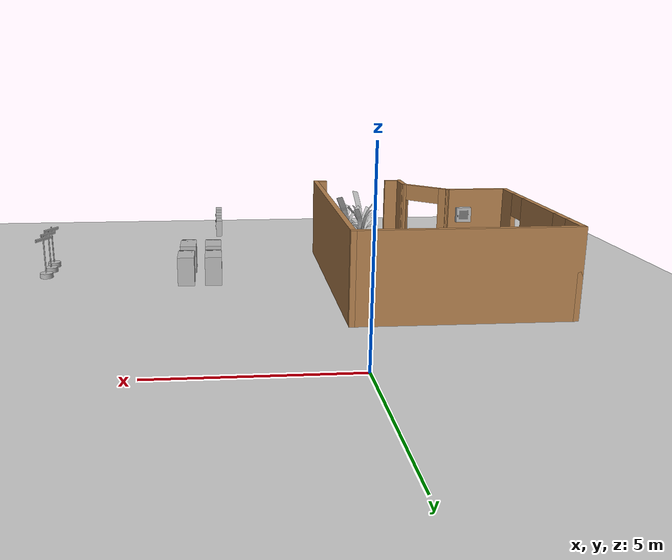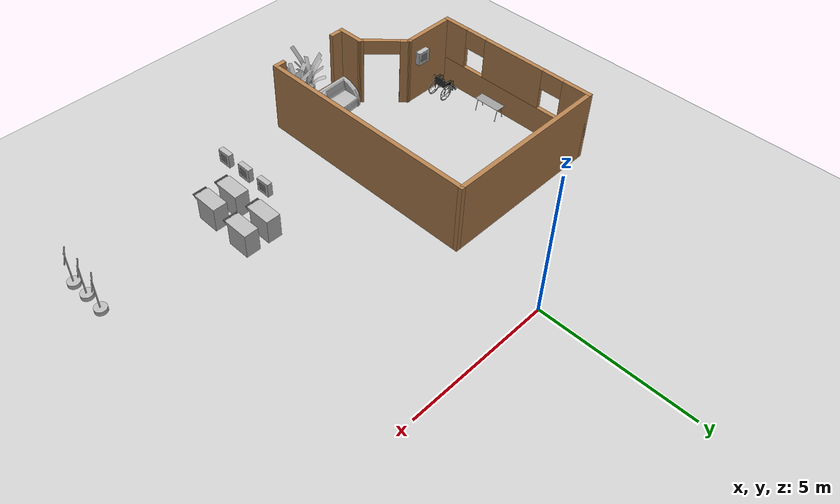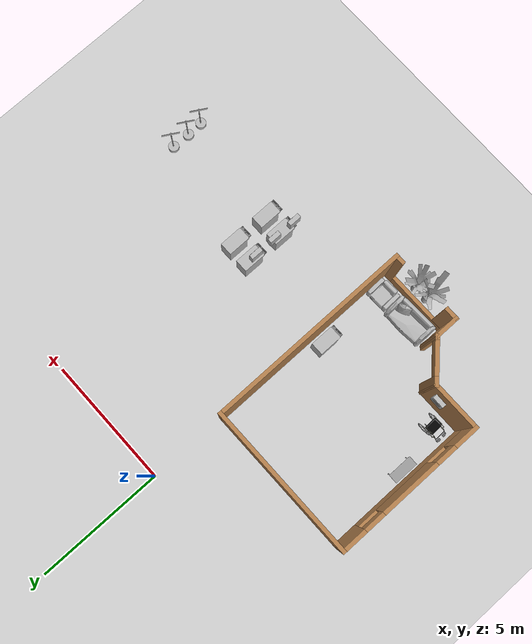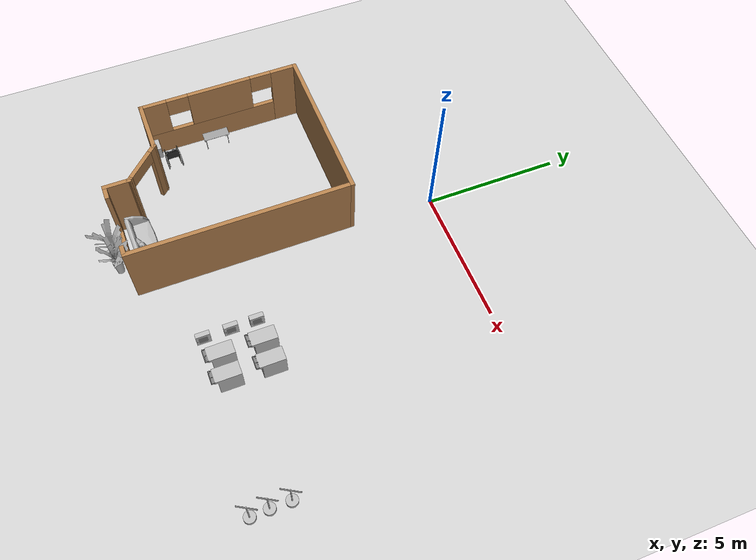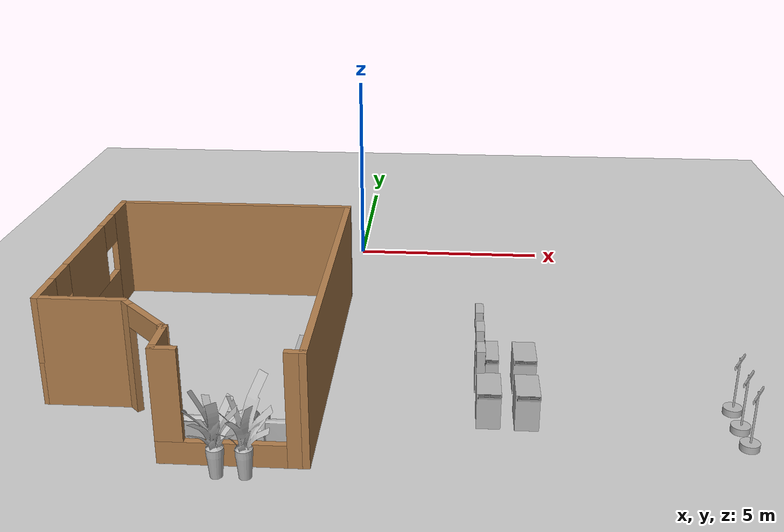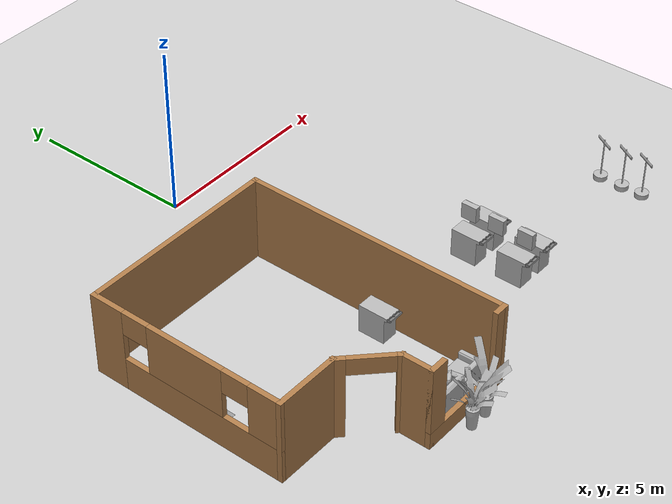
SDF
<sdf version="1.6">
 <world name="default">
  <model name="ground_plane">
   <static>1</static>
   <link name="link">
    <collision name="collision">
     <geometry><plane><normal>0 0 1</normal><size>100 100</size></plane></geometry>
     <surface>
      <contact><collide_bitmask>65535</collide_bitmask></contact>
      <friction><ode><mu>100</mu><mu2>50</mu2></ode></friction>
     </surface>
    </collision>
    <visual name="visual">
     <cast_shadows>0</cast_shadows>
     <geometry><plane><normal>0 0 1</normal><size>100 100</size></plane></geometry>
     <material>
      <script><uri>file://media/materials/scripts/gazebo.material</uri><name>Gazebo/Grey</name></script>
     </material>
    </visual>
   </link>
  </model>
  <model name="hospital_room_empty_clone">
   <link name="Wall_0">
    <pose>-4e-06 -3.9165 0 0 -0 0</pose>
    <visual name="Wall_0_Visual">
     <pose>0 0 1.25 0 -0 0</pose>
     <geometry><box><size>6 0.15 2.5</size></box></geometry>
     <material>
      <script><uri>file://media/materials/scripts/gazebo.material</uri><name>Gazebo/Wood</name></script>
      <ambient>1 1 1 1</ambient>
     </material>
     <meta><layer>0</layer></meta>
    </visual>
    <collision name="Wall_0_Collision">
     <pose>0 0 1.25 0 -0 0</pose>
     <geometry><box><size>6 0.15 2.5</size></box></geometry>
     <surface>
      <friction>
       <ode><mu>1</mu><mu2>1</mu2><fdir1>0 0 0</fdir1><slip1>0</slip1><slip2>0</slip2></ode>
       <torsional>
        <coefficient>1</coefficient>
        <patch_radius>0</patch_radius>
        <surface_radius>0</surface_radius>
        <use_patch_radius>1</use_patch_radius>
        <ode><slip>0</slip></ode>
       </torsional>
      </friction>
      <bounce><restitution_coefficient>0</restitution_coefficient><threshold>1e+06</threshold></bounce>
      <contact>
       <collide_without_contact>0</collide_without_contact>
       <collide_without_contact_bitmask>1</collide_without_contact_bitmask>
       <collide_bitmask>1</collide_bitmask>
       <ode>
        <soft_cfm>0</soft_cfm>
        <soft_erp>0.2</soft_erp>
        <kp>1e+13</kp>
        <kd>1</kd>
        <max_vel>0.01</max_vel>
        <min_depth>0</min_depth>
       </ode>
       <bullet>
        <split_impulse>1</split_impulse>
        <split_impulse_penetration_threshold>-0.01</split_impulse_penetration_threshold>
        <soft_cfm>0</soft_cfm>
        <soft_erp>0.2</soft_erp>
        <kp>1e+13</kp>
        <kd>1</kd>
       </bullet>
      </contact>
     </surface>
    </collision>
   </link>
   <link name="Wall_3">
    <pose>-2.925 0 0 0 -0 1.5708</pose>
    <visual name="Wall_3_Visual">
     <pose>0 0 1.25 0 -0 0</pose>
     <geometry><box><size>7.98302 0.15 2.5</size></box></geometry>
     <material>
      <script><uri>file://media/materials/scripts/gazebo.material</uri><name>Gazebo/Wood</name></script>
      <ambient>1 1 1 1</ambient>
     </material>
     <meta><layer>0</layer></meta>
    </visual>
    <collision name="Wall_3_Collision">
     <pose>0 0 1.25 0 -0 0</pose>
     <geometry><box><size>7.98302 0.15 2.5</size></box></geometry>
     <surface>
      <friction>
       <ode><mu>1</mu><mu2>1</mu2><fdir1>0 0 0</fdir1><slip1>0</slip1><slip2>0</slip2></ode>
       <torsional>
        <coefficient>1</coefficient>
        <patch_radius>0</patch_radius>
        <surface_radius>0</surface_radius>
        <use_patch_radius>1</use_patch_radius>
        <ode><slip>0</slip></ode>
       </torsional>
      </friction>
      <bounce><restitution_coefficient>0</restitution_coefficient><threshold>1e+06</threshold></bounce>
      <contact>
       <collide_without_contact>0</collide_without_contact>
       <collide_without_contact_bitmask>1</collide_without_contact_bitmask>
       <collide_bitmask>1</collide_bitmask>
       <ode>
        <soft_cfm>0</soft_cfm>
        <soft_erp>0.2</soft_erp>
        <kp>1e+13</kp>
        <kd>1</kd>
        <max_vel>0.01</max_vel>
        <min_depth>0</min_depth>
       </ode>
       <bullet>
        <split_impulse>1</split_impulse>
        <split_impulse_penetration_threshold>-0.01</split_impulse_penetration_threshold>
        <soft_cfm>0</soft_cfm>
        <soft_erp>0.2</soft_erp>
        <kp>1e+13</kp>
        <kd>1</kd>
       </bullet>
      </contact>
     </surface>
    </collision>
   </link>
   <link name="Wall_4">
    <pose>-1.5 3.9165 0 0 -0 0</pose>
    <visual name="Wall_4_Visual_0">
     <pose>-1.28125 0 1.25 0 -0 0</pose>
     <geometry><box><size>0.437506 0.15 2.5</size></box></geometry>
     <material>
      <script><uri>file://media/materials/scripts/gazebo.material</uri><name>Gazebo/Wood</name></script>
      <ambient>1 1 1 1</ambient>
     </material>
     <meta><layer>0</layer></meta>
    </visual>
    <visual name="Wall_4_Visual_1">
     <pose>0.218753 0 0.25 0 -0 0</pose>
     <geometry><box><size>2.56249 0.15 0.5</size></box></geometry>
     <material>
      <script><uri>file://media/materials/scripts/gazebo.material</uri><name>Gazebo/Wood</name></script>
      <ambient>1 1 1 1</ambient>
     </material>
     <meta><layer>0</layer></meta>
    </visual>
    <visual name="Wall_4_Visual_2">
     <pose>1.21875 0 1.5 0 -0 0</pose>
     <geometry><box><size>0.562494 0.15 2</size></box></geometry>
     <material>
      <script><uri>file://media/materials/scripts/gazebo.material</uri><name>Gazebo/Wood</name></script>
      <ambient>1 1 1 1</ambient>
     </material>
     <meta><layer>0</layer></meta>
    </visual>
    <collision name="Wall_4_Collision_0">
     <pose>-1.28125 0 1.25 0 -0 0</pose>
     <geometry><box><size>0.437506 0.15 2.5</size></box></geometry>
     <surface>
      <friction>
       <ode><mu>1</mu><mu2>1</mu2><fdir1>0 0 0</fdir1><slip1>0</slip1><slip2>0</slip2></ode>
       <torsional>
        <coefficient>1</coefficient>
        <patch_radius>0</patch_radius>
        <surface_radius>0</surface_radius>
        <use_patch_radius>1</use_patch_radius>
        <ode><slip>0</slip></ode>
       </torsional>
      </friction>
      <bounce><restitution_coefficient>0</restitution_coefficient><threshold>1e+06</threshold></bounce>
      <contact>
       <collide_without_contact>0</collide_without_contact>
       <collide_without_contact_bitmask>1</collide_without_contact_bitmask>
       <collide_bitmask>1</collide_bitmask>
       <ode>
        <soft_cfm>0</soft_cfm>
        <soft_erp>0.2</soft_erp>
        <kp>1e+13</kp>
        <kd>1</kd>
        <max_vel>0.01</max_vel>
        <min_depth>0</min_depth>
       </ode>
       <bullet>
        <split_impulse>1</split_impulse>
        <split_impulse_penetration_threshold>-0.01</split_impulse_penetration_threshold>
        <soft_cfm>0</soft_cfm>
        <soft_erp>0.2</soft_erp>
        <kp>1e+13</kp>
        <kd>1</kd>
       </bullet>
      </contact>
     </surface>
    </collision>
    <collision name="Wall_4_Collision_1">
     <pose>0.218753 0 0.25 0 -0 0</pose>
     <geometry><box><size>2.56249 0.15 0.5</size></box></geometry>
     <surface>
      <friction>
       <ode><mu>1</mu><mu2>1</mu2><fdir1>0 0 0</fdir1><slip1>0</slip1><slip2>0</slip2></ode>
       <torsional>
        <coefficient>1</coefficient>
        <patch_radius>0</patch_radius>
        <surface_radius>0</surface_radius>
        <use_patch_radius>1</use_patch_radius>
        <ode><slip>0</slip></ode>
       </torsional>
      </friction>
      <bounce><restitution_coefficient>0</restitution_coefficient><threshold>1e+06</threshold></bounce>
      <contact>
       <collide_without_contact>0</collide_without_contact>
       <collide_without_contact_bitmask>1</collide_without_contact_bitmask>
       <collide_bitmask>1</collide_bitmask>
       <ode>
        <soft_cfm>0</soft_cfm>
        <soft_erp>0.2</soft_erp>
        <kp>1e+13</kp>
        <kd>1</kd>
        <max_vel>0.01</max_vel>
        <min_depth>0</min_depth>
       </ode>
       <bullet>
        <split_impulse>1</split_impulse>
        <split_impulse_penetration_threshold>-0.01</split_impulse_penetration_threshold>
        <soft_cfm>0</soft_cfm>
        <soft_erp>0.2</soft_erp>
        <kp>1e+13</kp>
        <kd>1</kd>
       </bullet>
      </contact>
     </surface>
    </collision>
    <collision name="Wall_4_Collision_2">
     <pose>1.21875 0 1.5 0 -0 0</pose>
     <geometry><box><size>0.562494 0.15 2</size></box></geometry>
     <surface>
      <friction>
       <ode><mu>1</mu><mu2>1</mu2><fdir1>0 0 0</fdir1><slip1>0</slip1><slip2>0</slip2></ode>
       <torsional>
        <coefficient>1</coefficient>
        <patch_radius>0</patch_radius>
        <surface_radius>0</surface_radius>
        <use_patch_radius>1</use_patch_radius>
        <ode><slip>0</slip></ode>
       </torsional>
      </friction>
      <bounce><restitution_coefficient>0</restitution_coefficient><threshold>1e+06</threshold></bounce>
      <contact>
       <collide_without_contact>0</collide_without_contact>
       <collide_without_contact_bitmask>1</collide_without_contact_bitmask>
       <collide_bitmask>1</collide_bitmask>
       <ode>
        <soft_cfm>0</soft_cfm>
        <soft_erp>0.2</soft_erp>
        <kp>1e+13</kp>
        <kd>1</kd>
        <max_vel>0.01</max_vel>
        <min_depth>0</min_depth>
       </ode>
       <bullet>
        <split_impulse>1</split_impulse>
        <split_impulse_penetration_threshold>-0.01</split_impulse_penetration_threshold>
        <soft_cfm>0</soft_cfm>
        <soft_erp>0.2</soft_erp>
        <kp>1e+13</kp>
        <kd>1</kd>
       </bullet>
      </contact>
     </surface>
    </collision>
   </link>
   <link name="Wall_5">
    <pose>-0.075004 3.4915 0 0 0 -1.5708</pose>
    <visual name="Wall_5_Visual">
     <pose>0 0 1.25 0 -0 0</pose>
     <geometry><box><size>1 0.15 2.5</size></box></geometry>
     <material>
      <script><uri>file://media/materials/scripts/gazebo.material</uri><name>Gazebo/Wood</name></script>
      <ambient>1 1 1 1</ambient>
     </material>
     <meta><layer>0</layer></meta>
    </visual>
    <collision name="Wall_5_Collision">
     <pose>0 0 1.25 0 -0 0</pose>
     <geometry><box><size>1 0.15 2.5</size></box></geometry>
     <surface>
      <friction>
       <ode><mu>1</mu><mu2>1</mu2><fdir1>0 0 0</fdir1><slip1>0</slip1><slip2>0</slip2></ode>
       <torsional>
        <coefficient>1</coefficient>
        <patch_radius>0</patch_radius>
        <surface_radius>0</surface_radius>
        <use_patch_radius>1</use_patch_radius>
        <ode><slip>0</slip></ode>
       </torsional>
      </friction>
      <bounce><restitution_coefficient>0</restitution_coefficient><threshold>1e+06</threshold></bounce>
      <contact>
       <collide_without_contact>0</collide_without_contact>
       <collide_without_contact_bitmask>1</collide_without_contact_bitmask>
       <collide_bitmask>1</collide_bitmask>
       <ode>
        <soft_cfm>0</soft_cfm>
        <soft_erp>0.2</soft_erp>
        <kp>1e+13</kp>
        <kd>1</kd>
        <max_vel>0.01</max_vel>
        <min_depth>0</min_depth>
       </ode>
       <bullet>
        <split_impulse>1</split_impulse>
        <split_impulse_penetration_threshold>-0.01</split_impulse_penetration_threshold>
        <soft_cfm>0</soft_cfm>
        <soft_erp>0.2</soft_erp>
        <kp>1e+13</kp>
        <kd>1</kd>
       </bullet>
      </contact>
     </surface>
    </collision>
   </link>
   <link name="Wall_7">
    <pose>2.925 -1 0 0 -0 1.5708</pose>
    <visual name="Wall_7_Visual_0">
     <pose>-2.47597 0 1.25 0 -0 0</pose>
     <geometry><box><size>1.03106 0.15 2.5</size></box></geometry>
     <material>
      <script><uri>file://media/materials/scripts/gazebo.material</uri><name>Gazebo/Wood</name></script>
      <ambient>0.921569 0.807843 0.615686 1</ambient>
     </material>
     <meta><layer>0</layer></meta>
    </visual>
    <visual name="Wall_7_Visual_1">
     <pose>0.515531 0 0.5 0 -0 0</pose>
     <geometry><box><size>4.95194 0.15 1</size></box></geometry>
     <material>
      <script><uri>file://media/materials/scripts/gazebo.material</uri><name>Gazebo/Wood</name></script>
      <ambient>0.921569 0.807843 0.615686 1</ambient>
     </material>
     <meta><layer>0</layer></meta>
    </visual>
    <visual name="Wall_7_Visual_2">
     <pose>0.016139 0 1.75 0 -0 0</pose>
     <geometry><box><size>2.35315 0.15 1.5</size></box></geometry>
     <material>
      <script><uri>file://media/materials/scripts/gazebo.material</uri><name>Gazebo/Wood</name></script>
      <ambient>0.921569 0.807843 0.615686 1</ambient>
     </material>
     <meta><layer>0</layer></meta>
    </visual>
    <visual name="Wall_7_Visual_3">
     <pose>2.49211 0 1.75 0 -0 0</pose>
     <geometry><box><size>0.998785 0.15 1.5</size></box></geometry>
     <material>
      <script><uri>file://media/materials/scripts/gazebo.material</uri><name>Gazebo/Wood</name></script>
      <ambient>0.921569 0.807843 0.615686 1</ambient>
     </material>
     <meta><layer>0</layer></meta>
    </visual>
    <visual name="Wall_7_Visual_4">
     <pose>-1.56044 0 2.15 0 -0 0</pose>
     <geometry><box><size>0.8 0.15 0.7</size></box></geometry>
     <material>
      <script><uri>file://media/materials/scripts/gazebo.material</uri><name>Gazebo/Wood</name></script>
      <ambient>0.921569 0.807843 0.615686 1</ambient>
     </material>
     <meta><layer>0</layer></meta>
    </visual>
    <visual name="Wall_7_Visual_5">
     <pose>1.59272 0 2.15 0 -0 0</pose>
     <geometry><box><size>0.8 0.15 0.7</size></box></geometry>
     <material>
      <script><uri>file://media/materials/scripts/gazebo.material</uri><name>Gazebo/Wood</name></script>
      <ambient>0.921569 0.807843 0.615686 1</ambient>
     </material>
     <meta><layer>0</layer></meta>
    </visual>
    <collision name="Wall_7_Collision_0">
     <pose>-2.47597 0 1.25 0 -0 0</pose>
     <geometry><box><size>1.03106 0.15 2.5</size></box></geometry>
     <surface>
      <friction>
       <ode><mu>1</mu><mu2>1</mu2><fdir1>0 0 0</fdir1><slip1>0</slip1><slip2>0</slip2></ode>
       <torsional>
        <coefficient>1</coefficient>
        <patch_radius>0</patch_radius>
        <surface_radius>0</surface_radius>
        <use_patch_radius>1</use_patch_radius>
        <ode><slip>0</slip></ode>
       </torsional>
      </friction>
      <bounce><restitution_coefficient>0</restitution_coefficient><threshold>1e+06</threshold></bounce>
      <contact>
       <collide_without_contact>0</collide_without_contact>
       <collide_without_contact_bitmask>1</collide_without_contact_bitmask>
       <collide_bitmask>1</collide_bitmask>
       <ode>
        <soft_cfm>0</soft_cfm>
        <soft_erp>0.2</soft_erp>
        <kp>1e+13</kp>
        <kd>1</kd>
        <max_vel>0.01</max_vel>
        <min_depth>0</min_depth>
       </ode>
       <bullet>
        <split_impulse>1</split_impulse>
        <split_impulse_penetration_threshold>-0.01</split_impulse_penetration_threshold>
        <soft_cfm>0</soft_cfm>
        <soft_erp>0.2</soft_erp>
        <kp>1e+13</kp>
        <kd>1</kd>
       </bullet>
      </contact>
     </surface>
    </collision>
    <collision name="Wall_7_Collision_1">
     <pose>0.515531 0 0.5 0 -0 0</pose>
     <geometry><box><size>4.95194 0.15 1</size></box></geometry>
     <surface>
      <friction>
       <ode><mu>1</mu><mu2>1</mu2><fdir1>0 0 0</fdir1><slip1>0</slip1><slip2>0</slip2></ode>
       <torsional>
        <coefficient>1</coefficient>
        <patch_radius>0</patch_radius>
        <surface_radius>0</surface_radius>
        <use_patch_radius>1</use_patch_radius>
        <ode><slip>0</slip></ode>
       </torsional>
      </friction>
      <bounce><restitution_coefficient>0</restitution_coefficient><threshold>1e+06</threshold></bounce>
      <contact>
       <collide_without_contact>0</collide_without_contact>
       <collide_without_contact_bitmask>1</collide_without_contact_bitmask>
       <collide_bitmask>1</collide_bitmask>
       <ode>
        <soft_cfm>0</soft_cfm>
        <soft_erp>0.2</soft_erp>
        <kp>1e+13</kp>
        <kd>1</kd>
        <max_vel>0.01</max_vel>
        <min_depth>0</min_depth>
       </ode>
       <bullet>
        <split_impulse>1</split_impulse>
        <split_impulse_penetration_threshold>-0.01</split_impulse_penetration_threshold>
        <soft_cfm>0</soft_cfm>
        <soft_erp>0.2</soft_erp>
        <kp>1e+13</kp>
        <kd>1</kd>
       </bullet>
      </contact>
     </surface>
    </collision>
    <collision name="Wall_7_Collision_2">
     <pose>0.016139 0 1.75 0 -0 0</pose>
     <geometry><box><size>2.35315 0.15 1.5</size></box></geometry>
     <surface>
      <friction>
       <ode><mu>1</mu><mu2>1</mu2><fdir1>0 0 0</fdir1><slip1>0</slip1><slip2>0</slip2></ode>
       <torsional>
        <coefficient>1</coefficient>
        <patch_radius>0</patch_radius>
        <surface_radius>0</surface_radius>
        <use_patch_radius>1</use_patch_radius>
        <ode><slip>0</slip></ode>
       </torsional>
      </friction>
      <bounce><restitution_coefficient>0</restitution_coefficient><threshold>1e+06</threshold></bounce>
      <contact>
       <collide_without_contact>0</collide_without_contact>
       <collide_without_contact_bitmask>1</collide_without_contact_bitmask>
       <collide_bitmask>1</collide_bitmask>
       <ode>
        <soft_cfm>0</soft_cfm>
        <soft_erp>0.2</soft_erp>
        <kp>1e+13</kp>
        <kd>1</kd>
        <max_vel>0.01</max_vel>
        <min_depth>0</min_depth>
       </ode>
       <bullet>
        <split_impulse>1</split_impulse>
        <split_impulse_penetration_threshold>-0.01</split_impulse_penetration_threshold>
        <soft_cfm>0</soft_cfm>
        <soft_erp>0.2</soft_erp>
        <kp>1e+13</kp>
        <kd>1</kd>
       </bullet>
      </contact>
     </surface>
    </collision>
    <collision name="Wall_7_Collision_3">
     <pose>2.49211 0 1.75 0 -0 0</pose>
     <geometry><box><size>0.998785 0.15 1.5</size></box></geometry>
     <surface>
      <friction>
       <ode><mu>1</mu><mu2>1</mu2><fdir1>0 0 0</fdir1><slip1>0</slip1><slip2>0</slip2></ode>
       <torsional>
        <coefficient>1</coefficient>
        <patch_radius>0</patch_radius>
        <surface_radius>0</surface_radius>
        <use_patch_radius>1</use_patch_radius>
        <ode><slip>0</slip></ode>
       </torsional>
      </friction>
      <bounce><restitution_coefficient>0</restitution_coefficient><threshold>1e+06</threshold></bounce>
      <contact>
       <collide_without_contact>0</collide_without_contact>
       <collide_without_contact_bitmask>1</collide_without_contact_bitmask>
       <collide_bitmask>1</collide_bitmask>
       <ode>
        <soft_cfm>0</soft_cfm>
        <soft_erp>0.2</soft_erp>
        <kp>1e+13</kp>
        <kd>1</kd>
        <max_vel>0.01</max_vel>
        <min_depth>0</min_depth>
       </ode>
       <bullet>
        <split_impulse>1</split_impulse>
        <split_impulse_penetration_threshold>-0.01</split_impulse_penetration_threshold>
        <soft_cfm>0</soft_cfm>
        <soft_erp>0.2</soft_erp>
        <kp>1e+13</kp>
        <kd>1</kd>
       </bullet>
      </contact>
     </surface>
    </collision>
    <collision name="Wall_7_Collision_4">
     <pose>-1.56044 0 2.15 0 -0 0</pose>
     <geometry><box><size>0.8 0.15 0.7</size></box></geometry>
     <surface>
      <friction>
       <ode><mu>1</mu><mu2>1</mu2><fdir1>0 0 0</fdir1><slip1>0</slip1><slip2>0</slip2></ode>
       <torsional>
        <coefficient>1</coefficient>
        <patch_radius>0</patch_radius>
        <surface_radius>0</surface_radius>
        <use_patch_radius>1</use_patch_radius>
        <ode><slip>0</slip></ode>
       </torsional>
      </friction>
      <bounce><restitution_coefficient>0</restitution_coefficient><threshold>1e+06</threshold></bounce>
      <contact>
       <collide_without_contact>0</collide_without_contact>
       <collide_without_contact_bitmask>1</collide_without_contact_bitmask>
       <collide_bitmask>1</collide_bitmask>
       <ode>
        <soft_cfm>0</soft_cfm>
        <soft_erp>0.2</soft_erp>
        <kp>1e+13</kp>
        <kd>1</kd>
        <max_vel>0.01</max_vel>
        <min_depth>0</min_depth>
       </ode>
       <bullet>
        <split_impulse>1</split_impulse>
        <split_impulse_penetration_threshold>-0.01</split_impulse_penetration_threshold>
        <soft_cfm>0</soft_cfm>
        <soft_erp>0.2</soft_erp>
        <kp>1e+13</kp>
        <kd>1</kd>
       </bullet>
      </contact>
     </surface>
    </collision>
    <collision name="Wall_7_Collision_5">
     <pose>1.59272 0 2.15 0 -0 0</pose>
     <geometry><box><size>0.8 0.15 0.7</size></box></geometry>
     <surface>
      <friction>
       <ode><mu>1</mu><mu2>1</mu2><fdir1>0 0 0</fdir1><slip1>0</slip1><slip2>0</slip2></ode>
       <torsional>
        <coefficient>1</coefficient>
        <patch_radius>0</patch_radius>
        <surface_radius>0</surface_radius>
        <use_patch_radius>1</use_patch_radius>
        <ode><slip>0</slip></ode>
       </torsional>
      </friction>
      <bounce><restitution_coefficient>0</restitution_coefficient><threshold>1e+06</threshold></bounce>
      <contact>
       <collide_without_contact>0</collide_without_contact>
       <collide_without_contact_bitmask>1</collide_without_contact_bitmask>
       <collide_bitmask>1</collide_bitmask>
       <ode>
        <soft_cfm>0</soft_cfm>
        <soft_erp>0.2</soft_erp>
        <kp>1e+13</kp>
        <kd>1</kd>
        <max_vel>0.01</max_vel>
        <min_depth>0</min_depth>
       </ode>
       <bullet>
        <split_impulse>1</split_impulse>
        <split_impulse_penetration_threshold>-0.01</split_impulse_penetration_threshold>
        <soft_cfm>0</soft_cfm>
        <soft_erp>0.2</soft_erp>
        <kp>1e+13</kp>
        <kd>1</kd>
       </bullet>
      </contact>
     </surface>
    </collision>
   </link>
   <link name="Wall_8">
    <pose>2 1.9166 0 0 -0 3.14148</pose>
    <visual name="Wall_8_Visual">
     <pose>0 0 1.25 0 -0 0</pose>
     <geometry><box><size>2 0.15 2.5</size></box></geometry>
     <material>
      <script><uri>file://media/materials/scripts/gazebo.material</uri><name>Gazebo/Wood</name></script>
      <ambient>1 1 1 1</ambient>
     </material>
     <meta><layer>0</layer></meta>
    </visual>
    <collision name="Wall_8_Collision">
     <pose>0 0 1.25 0 -0 0</pose>
     <geometry><box><size>2 0.15 2.5</size></box></geometry>
     <surface>
      <friction>
       <ode><mu>1</mu><mu2>1</mu2><fdir1>0 0 0</fdir1><slip1>0</slip1><slip2>0</slip2></ode>
       <torsional>
        <coefficient>1</coefficient>
        <patch_radius>0</patch_radius>
        <surface_radius>0</surface_radius>
        <use_patch_radius>1</use_patch_radius>
        <ode><slip>0</slip></ode>
       </torsional>
      </friction>
      <bounce><restitution_coefficient>0</restitution_coefficient><threshold>1e+06</threshold></bounce>
      <contact>
       <collide_without_contact>0</collide_without_contact>
       <collide_without_contact_bitmask>1</collide_without_contact_bitmask>
       <collide_bitmask>1</collide_bitmask>
       <ode>
        <soft_cfm>0</soft_cfm>
        <soft_erp>0.2</soft_erp>
        <kp>1e+13</kp>
        <kd>1</kd>
        <max_vel>0.01</max_vel>
        <min_depth>0</min_depth>
       </ode>
       <bullet>
        <split_impulse>1</split_impulse>
        <split_impulse_penetration_threshold>-0.01</split_impulse_penetration_threshold>
        <soft_cfm>0</soft_cfm>
        <soft_erp>0.2</soft_erp>
        <kp>1e+13</kp>
        <kd>1</kd>
       </bullet>
      </contact>
     </surface>
    </collision>
   </link>
   <link name="Wall_9">
    <pose>0.499996 2.4916 0 0 -0 2.35628</pose>
    <visual name="Wall_9_Visual_1">
     <pose>0.785148 0 1.25 0 -0 0</pose>
     <geometry><box><size>0.205905 0.15 2.5</size></box></geometry>
     <material>
      <script><uri>file://media/materials/scripts/gazebo.material</uri><name>Gazebo/Wood</name></script>
      <ambient>1 1 1 1</ambient>
     </material>
     <meta><layer>0</layer></meta>
    </visual>
    <visual name="Wall_9_Visual_0">
     <pose>-0.702952 0 1.25 0 -0 0</pose>
     <geometry><box><size>0.370295 0.15 2.5</size></box></geometry>
     <material>
      <script><uri>file://media/materials/scripts/gazebo.material</uri><name>Gazebo/Wood</name></script>
      <ambient>1 1 1 1</ambient>
     </material>
     <meta><layer>0</layer></meta>
    </visual>
    <visual name="Wall_9_Visual_2">
     <pose>0.082195 0 2.25 0 -0 0</pose>
     <geometry><box><size>1.2 0.15 0.5</size></box></geometry>
     <material>
      <script><uri>file://media/materials/scripts/gazebo.material</uri><name>Gazebo/Wood</name></script>
      <ambient>1 1 1 1</ambient>
     </material>
     <meta><layer>0</layer></meta>
    </visual>
    <collision name="Wall_9_Collision_0">
     <pose>-0.702952 0 1.25 0 -0 0</pose>
     <geometry><box><size>0.370295 0.15 2.5</size></box></geometry>
     <surface>
      <friction>
       <ode><mu>1</mu><mu2>1</mu2><fdir1>0 0 0</fdir1><slip1>0</slip1><slip2>0</slip2></ode>
       <torsional>
        <coefficient>1</coefficient>
        <patch_radius>0</patch_radius>
        <surface_radius>0</surface_radius>
        <use_patch_radius>1</use_patch_radius>
        <ode><slip>0</slip></ode>
       </torsional>
      </friction>
      <bounce><restitution_coefficient>0</restitution_coefficient><threshold>1e+06</threshold></bounce>
      <contact>
       <collide_without_contact>0</collide_without_contact>
       <collide_without_contact_bitmask>1</collide_without_contact_bitmask>
       <collide_bitmask>1</collide_bitmask>
       <ode>
        <soft_cfm>0</soft_cfm>
        <soft_erp>0.2</soft_erp>
        <kp>1e+13</kp>
        <kd>1</kd>
        <max_vel>0.01</max_vel>
        <min_depth>0</min_depth>
       </ode>
       <bullet>
        <split_impulse>1</split_impulse>
        <split_impulse_penetration_threshold>-0.01</split_impulse_penetration_threshold>
        <soft_cfm>0</soft_cfm>
        <soft_erp>0.2</soft_erp>
        <kp>1e+13</kp>
        <kd>1</kd>
       </bullet>
      </contact>
     </surface>
    </collision>
    <collision name="Wall_9_Collision_1">
     <pose>0.785148 0 1.25 0 -0 0</pose>
     <geometry><box><size>0.205905 0.15 2.5</size></box></geometry>
     <surface>
      <friction>
       <ode><mu>1</mu><mu2>1</mu2><fdir1>0 0 0</fdir1><slip1>0</slip1><slip2>0</slip2></ode>
       <torsional>
        <coefficient>1</coefficient>
        <patch_radius>0</patch_radius>
        <surface_radius>0</surface_radius>
        <use_patch_radius>1</use_patch_radius>
        <ode><slip>0</slip></ode>
       </torsional>
      </friction>
      <bounce><restitution_coefficient>0</restitution_coefficient><threshold>1e+06</threshold></bounce>
      <contact>
       <collide_without_contact>0</collide_without_contact>
       <collide_without_contact_bitmask>1</collide_without_contact_bitmask>
       <collide_bitmask>1</collide_bitmask>
       <ode>
        <soft_cfm>0</soft_cfm>
        <soft_erp>0.2</soft_erp>
        <kp>1e+13</kp>
        <kd>1</kd>
        <max_vel>0.01</max_vel>
        <min_depth>0</min_depth>
       </ode>
       <bullet>
        <split_impulse>1</split_impulse>
        <split_impulse_penetration_threshold>-0.01</split_impulse_penetration_threshold>
        <soft_cfm>0</soft_cfm>
        <soft_erp>0.2</soft_erp>
        <kp>1e+13</kp>
        <kd>1</kd>
       </bullet>
      </contact>
     </surface>
    </collision>
    <collision name="Wall_9_Collision_2">
     <pose>0.082195 0 2.25 0 -0 0</pose>
     <geometry><box><size>1.2 0.15 0.5</size></box></geometry>
     <surface>
      <friction>
       <ode><mu>1</mu><mu2>1</mu2><fdir1>0 0 0</fdir1><slip1>0</slip1><slip2>0</slip2></ode>
       <torsional>
        <coefficient>1</coefficient>
        <patch_radius>0</patch_radius>
        <surface_radius>0</surface_radius>
        <use_patch_radius>1</use_patch_radius>
        <ode><slip>0</slip></ode>
       </torsional>
      </friction>
      <bounce><restitution_coefficient>0</restitution_coefficient><threshold>1e+06</threshold></bounce>
      <contact>
       <collide_without_contact>0</collide_without_contact>
       <collide_without_contact_bitmask>1</collide_without_contact_bitmask>
       <collide_bitmask>1</collide_bitmask>
       <ode>
        <soft_cfm>0</soft_cfm>
        <soft_erp>0.2</soft_erp>
        <kp>1e+13</kp>
        <kd>1</kd>
        <max_vel>0.01</max_vel>
        <min_depth>0</min_depth>
       </ode>
       <bullet>
        <split_impulse>1</split_impulse>
        <split_impulse_penetration_threshold>-0.01</split_impulse_penetration_threshold>
        <soft_cfm>0</soft_cfm>
        <soft_erp>0.2</soft_erp>
        <kp>1e+13</kp>
        <kd>1</kd>
       </bullet>
      </contact>
     </surface>
    </collision>
   </link>
   <static>1</static>
   <pose>-3.00568 -7.00442 0 0 -0 3.14145</pose>
  </model>
  <model name="wall_locker_0">
   <static>1</static>
   <link name="link">
    <inertial>
     <mass>10</mass>
     <inertia><ixx>1</ixx><ixy>0</ixy><ixz>0</ixz><iyy>1</iyy><iyz>0</iyz><izz>1</izz></inertia>
    </inertial>
    <collision name="collision">
     <pose>-0.01 0.03 0.232 0 -0 0</pose>
     <geometry><box><size>0.17 0.465 0.465</size></box></geometry>
    </collision>
    <visual name="visual">
     <geometry><mesh><uri>model://wall_locker/wall_locker.dae</uri></mesh></geometry>
    </visual>
   </link>
   <pose>3.23343 -9.4108 1.4329 0 -0 0</pose>
  </model>
  <model name="wall_locker_1">
   <static>1</static>
   <link name="link">
    <inertial>
     <mass>10</mass>
     <inertia><ixx>1</ixx><ixy>0</ixy><ixz>0</ixz><iyy>1</iyy><iyz>0</iyz><izz>1</izz></inertia>
    </inertial>
    <collision name="collision">
     <pose>-0.01 0.03 0.232 0 -0 0</pose>
     <geometry><box><size>0.17 0.465 0.465</size></box></geometry>
    </collision>
    <visual name="visual">
     <geometry><mesh><uri>model://wall_locker/wall_locker.dae</uri></mesh></geometry>
    </visual>
   </link>
   <pose>3.23284 -8.50679 1.43563 0 -0 0</pose>
  </model>
  <model name="wall_locker_2">
   <static>1</static>
   <link name="link">
    <inertial>
     <mass>10</mass>
     <inertia><ixx>1</ixx><ixy>0</ixy><ixz>0</ixz><iyy>1</iyy><iyz>0</iyz><izz>1</izz></inertia>
    </inertial>
    <collision name="collision">
     <pose>-0.01 0.03 0.232 0 -0 0</pose>
     <geometry><box><size>0.17 0.465 0.465</size></box></geometry>
    </collision>
    <visual name="visual">
     <geometry><mesh><uri>model://wall_locker/wall_locker.dae</uri></mesh></geometry>
    </visual>
   </link>
   <pose>3.22775 -7.6537 1.43824 0 -0 0</pose>
  </model>
  <model name="service_cart_2">
   <static>0</static>
   <link name="link">
    <inertial>
     <mass>10</mass>
     <inertia><ixx>1</ixx><ixy>0</ixy><ixz>0</ixz><iyy>1</iyy><iyz>0</iyz><izz>1</izz></inertia>
    </inertial>
    <collision name="collision">
     <geometry><mesh><uri>model://service_cart/service_cart_collision.dae</uri></mesh></geometry>
    </collision>
    <visual name="visual">
     <geometry><mesh><uri>model://service_cart/service_cart.dae</uri></mesh></geometry>
    </visual>
   </link>
   <pose>3.45348 -9.02494 -0.000842 -0 9e-06 0.000155</pose>
  </model>
  <model name="service_cart_3">
   <static>0</static>
   <link name="link">
    <inertial>
     <mass>10</mass>
     <inertia><ixx>1</ixx><ixy>0</ixy><ixz>0</ixz><iyy>1</iyy><iyz>0</iyz><izz>1</izz></inertia>
    </inertial>
    <collision name="collision">
     <geometry><mesh><uri>model://service_cart/service_cart_collision.dae</uri></mesh></geometry>
    </collision>
    <visual name="visual">
     <geometry><mesh><uri>model://service_cart/service_cart.dae</uri></mesh></geometry>
    </visual>
   </link>
   <pose>3.4427 -7.58168 -0.000842 -0 9e-06 -0.005665</pose>
  </model>
  <model name="service_cart_4">
   <static>0</static>
   <link name="link">
    <inertial>
     <mass>10</mass>
     <inertia><ixx>1</ixx><ixy>0</ixy><ixz>0</ixz><iyy>1</iyy><iyz>0</iyz><izz>1</izz></inertia>
    </inertial>
    <collision name="collision">
     <geometry><mesh><uri>model://service_cart/service_cart_collision.dae</uri></mesh></geometry>
    </collision>
    <visual name="visual">
     <geometry><mesh><uri>model://service_cart/service_cart.dae</uri></mesh></geometry>
    </visual>
   </link>
   <pose>4.25906 -7.58532 -0.000842 0 9e-06 2e-06</pose>
  </model>
  <model name="service_cart_5">
   <static>0</static>
   <link name="link">
    <inertial>
     <mass>10</mass>
     <inertia><ixx>1</ixx><ixy>0</ixy><ixz>0</ixz><iyy>1</iyy><iyz>0</iyz><izz>1</izz></inertia>
    </inertial>
    <collision name="collision">
     <geometry><mesh><uri>model://service_cart/service_cart_collision.dae</uri></mesh></geometry>
    </collision>
    <visual name="visual">
     <geometry><mesh><uri>model://service_cart/service_cart.dae</uri></mesh></geometry>
    </visual>
   </link>
   <pose>4.23851 -9.05079 -0.000842 0 9e-06 2e-06</pose>
  </model>
  <model name="iv_pole_2">
   <static>0</static>
   <link name="link">
    <inertial>
     <mass>5</mass>
     <inertia><ixx>1</ixx><ixy>0</ixy><ixz>0</ixz><iyy>1</iyy><iyz>0</iyz><izz>1</izz></inertia>
    </inertial>
    <collision name="collision">
     <geometry><mesh><uri>model://iv_pole/iv_pole_collision.dae</uri></mesh></geometry>
    </collision>
    <visual name="visual"><geometry><mesh><uri>model://iv_pole/iv_pole.dae</uri></mesh></geometry></visual>
   </link>
   <pose>8.57237 -8.3318 0.008029 2e-06 -3e-06 -6e-05</pose>
  </model>
  <model name="iv_pole_3">
   <static>0</static>
   <link name="link">
    <inertial>
     <mass>5</mass>
     <inertia><ixx>1</ixx><ixy>0</ixy><ixz>0</ixz><iyy>1</iyy><iyz>0</iyz><izz>1</izz></inertia>
    </inertial>
    <collision name="collision">
     <geometry><mesh><uri>model://iv_pole/iv_pole_collision.dae</uri></mesh></geometry>
    </collision>
    <visual name="visual"><geometry><mesh><uri>model://iv_pole/iv_pole.dae</uri></mesh></geometry></visual>
   </link>
   <pose>8.56157 -9.03801 0.008029 1e-06 -0 -5.9e-05</pose>
  </model>
  <model name="iv_pole_4">
   <static>0</static>
   <link name="link">
    <inertial>
     <mass>5</mass>
     <inertia><ixx>1</ixx><ixy>0</ixy><ixz>0</ixz><iyy>1</iyy><iyz>0</iyz><izz>1</izz></inertia>
    </inertial>
    <collision name="collision">
     <geometry><mesh><uri>model://iv_pole/iv_pole_collision.dae</uri></mesh></geometry>
    </collision>
    <visual name="visual"><geometry><mesh><uri>model://iv_pole/iv_pole.dae</uri></mesh></geometry></visual>
   </link>
   <pose>8.586 -9.67138 0.008029 1e-06 0 -6.3e-05</pose>
  </model>
  <model name="plant_1">
   <static>1</static>
   <link name="link">
    <inertial>
     <pose>0 -0.2 0 0 -0 0</pose>
     <mass>10</mass>
     <inertia><ixx>1</ixx><ixy>0</ixy><ixz>0</ixz><iyy>1</iyy><iyz>0</iyz><izz>1</izz></inertia>
    </inertial>
    <collision name="collision">
     <geometry><mesh><uri>model://plant/plant_collision.dae</uri></mesh></geometry>
    </collision>
    <visual name="visual"><geometry><mesh><uri>model://plant/plant.dae</uri></mesh></geometry></visual>
   </link>
   <pose>-1.20034 -11.3169 0 0 -0 0</pose>
  </model>
  <model name="round_sofa_0">
   <static>1</static>
   <link name="link">
    <inertial>
     <mass>5</mass>
     <inertia><ixx>1</ixx><ixy>0</ixy><ixz>0</ixz><iyy>1</iyy><iyz>0</iyz><izz>1</izz></inertia>
    </inertial>
    <collision name="collision">
     <pose>-0.09 -0.05 0.425 0 -0 0</pose>
     <geometry><box><size>1.65 0.85 0.85</size></box></geometry>
    </collision>
    <visual name="visual"><geometry><mesh><uri>model://round_sofa/round_sofa.dae</uri></mesh></geometry></visual>
   </link>
   <pose>-2.04803 -10.3036 0 0 0 -3.10737</pose>
  </model>
  <model name="single_sofa_1">
   <static>1</static>
   <link name="link">
    <inertial>
     <mass>10</mass>
     <inertia><ixx>1</ixx><ixy>0</ixy><ixz>0</ixz><iyy>1</iyy><iyz>0</iyz><izz>1</izz></inertia>
    </inertial>
    <collision name="collision">
     <pose>0 0.07 0.39 0 -0 0</pose>
     <geometry><box><size>0.93 0.738 0.78</size></box></geometry>
    </collision>
    <visual name="visual">
     <geometry><mesh><uri>model://single_sofa/single_sofa.dae</uri></mesh></geometry>
    </visual>
   </link>
   <pose>-0.650333 -10.1634 0 0 0 -3.11752</pose>
  </model>
  <model name="ikea_desk_2">
   <static>1</static>
   <link name="link">
    <inertial>
     <mass>5</mass>
     <inertia><ixx>1</ixx><ixy>0</ixy><ixz>0</ixz><iyy>1</iyy><iyz>0</iyz><izz>1</izz></inertia>
    </inertial>
    <collision name="collision">
     <pose>0 0.03 0.227 0 -0 0</pose>
     <geometry><box><size>0.416 0.98 0.455</size></box></geometry>
    </collision>
    <visual name="visual"><geometry><mesh><uri>model://ikea_desk/ikea_desk.dae</uri></mesh></geometry></visual>
   </link>
   <pose>-5.54953 -6.54185 0 0 -0 0</pose>
  </model>
  <model name="service_cart_6">
   <static>0</static>
   <link name="link">
    <inertial>
     <mass>10</mass>
     <inertia><ixx>1</ixx><ixy>0</ixy><ixz>0</ixz><iyy>1</iyy><iyz>0</iyz><izz>1</izz></inertia>
    </inertial>
    <collision name="collision">
     <geometry><mesh><uri>model://service_cart/service_cart_collision.dae</uri></mesh></geometry>
    </collision>
    <visual name="visual">
     <geometry><mesh><uri>model://service_cart/service_cart.dae</uri></mesh></geometry>
    </visual>
   </link>
   <pose>-0.498099 -7.56383 -0.000842 -1.2e-05 0 0</pose>
  </model>
  <model name="wall_locker_3">
   <static>1</static>
   <link name="link">
    <inertial>
     <mass>10</mass>
     <inertia><ixx>1</ixx><ixy>0</ixy><ixz>0</ixz><iyy>1</iyy><iyz>0</iyz><izz>1</izz></inertia>
    </inertial>
    <collision name="collision">
     <pose>-0.01 0.03 0.232 0 -0 0</pose>
     <geometry><box><size>0.17 0.465 0.465</size></box></geometry>
    </collision>
    <visual name="visual">
     <geometry><mesh><uri>model://wall_locker/wall_locker.dae</uri></mesh></geometry>
    </visual>
   </link>
   <pose>-4.53998 -8.74774 1.47021 0 -0 1.55321</pose>
  </model>
  <model name="wheel_chair">
   <static>0</static>
   <link name="link">
    <inertial>
     <pose>0 -0.2 0 0 -0 0</pose>
     <mass>10</mass>
     <inertia><ixx>1</ixx><ixy>0</ixy><ixz>0</ixz><iyy>1</iyy><iyz>0</iyz><izz>1</izz></inertia>
    </inertial>
    <collision name="collision">
     <geometry><mesh><uri>model://wheel_chair/wheel_chair_collision.dae</uri></mesh></geometry>
    </collision>
    <visual name="visual">
     <geometry><mesh><uri>model://wheel_chair/wheel_chair.dae</uri></mesh></geometry>
    </visual>
   </link>
   <pose>-4.85175 -8.27264 0.003737 0.016422 -0.013482 -1.51794</pose>
  </model>
 </world>
</sdf>
